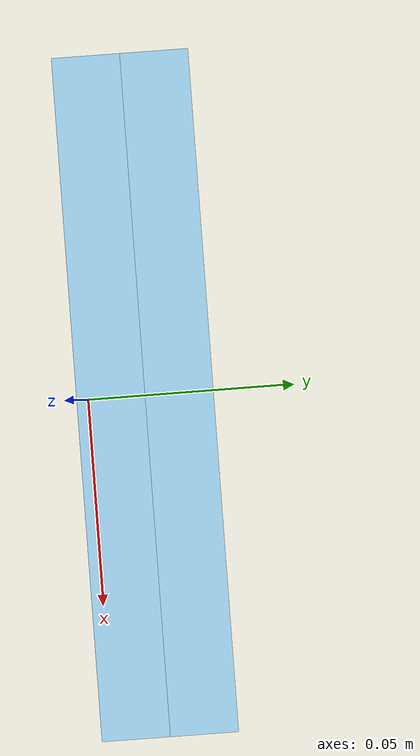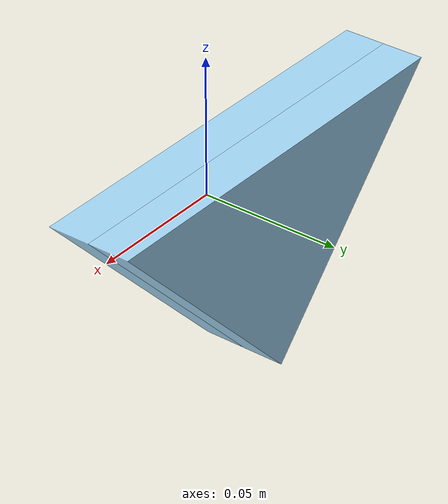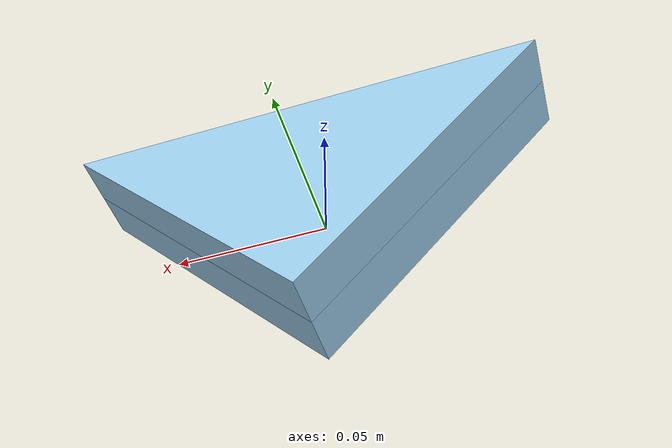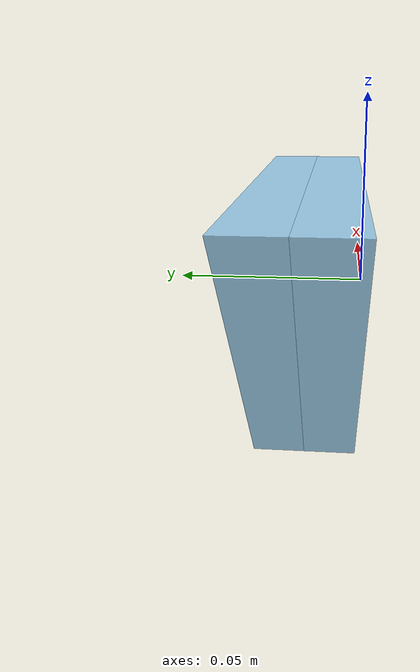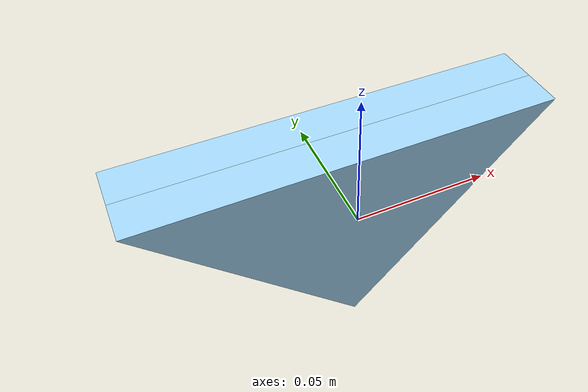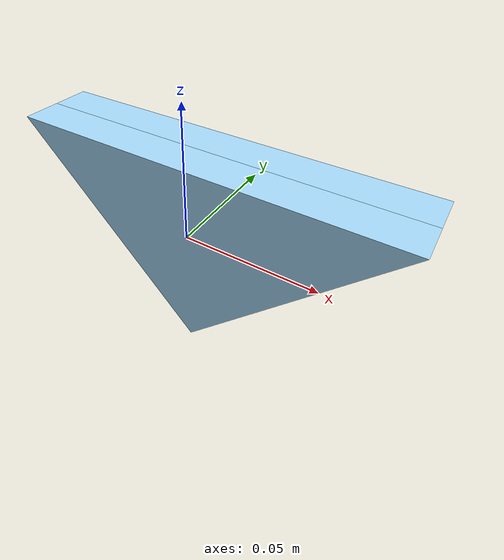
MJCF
<?xml version="1.0" ?>
<mujoco model="magic_triangle">
  <compiler angle="radian" meshdir="assets" autolimits="true"/>
  <default>
    <default class="magic_triangle">
      <joint frictionloss="0.1" armature="0.005"/>
      <position kp="1" dampratio="1"/>
      <default class="visual">
        <geom type="mesh" contype="0" conaffinity="0" group="2"/>
      </default>
      <default class="collision">
        <geom group="3"/>
      </default>
    </default>
  </default>
  <worldbody>
    <!-- Case body (contains case_up and case_down) -->
    <body name="case" pos="0 0 0" quat="0.7071068 -0.7071068 0 0" childclass="magic_triangle">
      <freejoint name="case_freejoint"/>
      <inertial pos="0 -0.0266667 0.015" mass="0.15" fullinertia="8.55879e-05 0.000169336 0.00022573 0 0 0"/>
      <!-- Part case_up -->
      <geom type="mesh" class="visual" pos="0 -0.0266667 0.03" quat="0 0 1 0" mesh="part_1__2" material="part_1__2_material"/>
      <geom type="mesh" class="collision" pos="0 -0.0266667 0.03" quat="0 0 1 0" mesh="part_1__2" material="part_1__2_material"/>
      <!-- Part case_down -->
      <geom type="mesh" class="visual" pos="0 -0.0266667 0" quat="1 0 0 0" mesh="part_1__2" material="part_1__2_material"/>
      <geom type="mesh" class="collision" pos="0 -0.0266667 0" quat="1 0 0 0" mesh="part_1__2" material="part_1__2_material"/>

      <!-- Wheel body (rotates relative to case) -->
      <body name="wheel" pos="0 0.00582573 0.01" quat="1 0 0 0">
        <joint name="wheel_joint" type="hinge" axis="0 0 1" pos="0 0 0" range="-3.14159 3.14159"/>
        <inertial pos="0 0 0" mass="0.086934" fullinertia="8.55879e-05 0.000169336 0.00022573 0 0 0"/>
        <!-- Part wheel -->
        <geom type="mesh" class="visual" pos="0 0 0" quat="1 0 0 0" mesh="part_1" material="part_1_material"/>
        <geom type="mesh" class="collision" pos="0 0 0" quat="1 0 0 0" mesh="part_1" material="part_1_material"/>
        <!-- IMU at center of wheel -->
        <site name="imu_site" pos="0 0 0" size="0.001"/>
      </body>
    </body>
  </worldbody>
  <asset>
    <mesh file="part_1.stl"/>
    <mesh file="part_1__2.stl"/>
    <material name="part_1_material" rgba="0.615686 0.811765 0.929412 1"/>
    <material name="part_1__2_material" rgba="0.615686 0.811765 0.929412 1"/>
  </asset>
  <actuator>
    <position name="wheel_actuator" joint="wheel_joint" kp="2.0"/>
  </actuator>
  <sensor>
    <!-- IMU sensors (gyroscope and accelerometer) -->
    <gyro name="gyro" site="imu_site"/>
    <accelerometer name="accelerometer" site="imu_site"/>
    <framequat name="orientation" objtype="site" objname="imu_site"/>
    <!-- Encoder for wheel angular position -->
    <jointpos name="wheel_encoder" joint="wheel_joint"/>
    <jointvel name="wheel_velocity" joint="wheel_joint"/>
  </sensor>
</mujoco>
